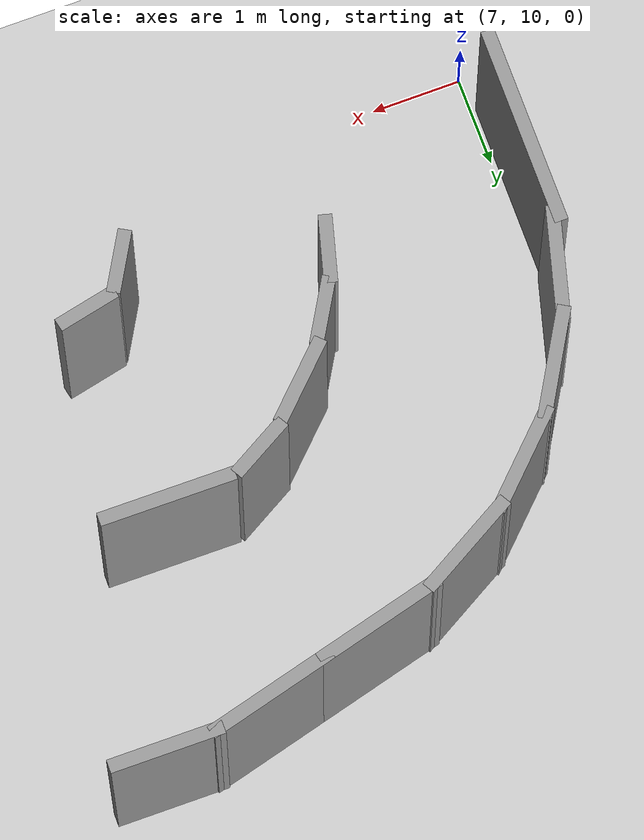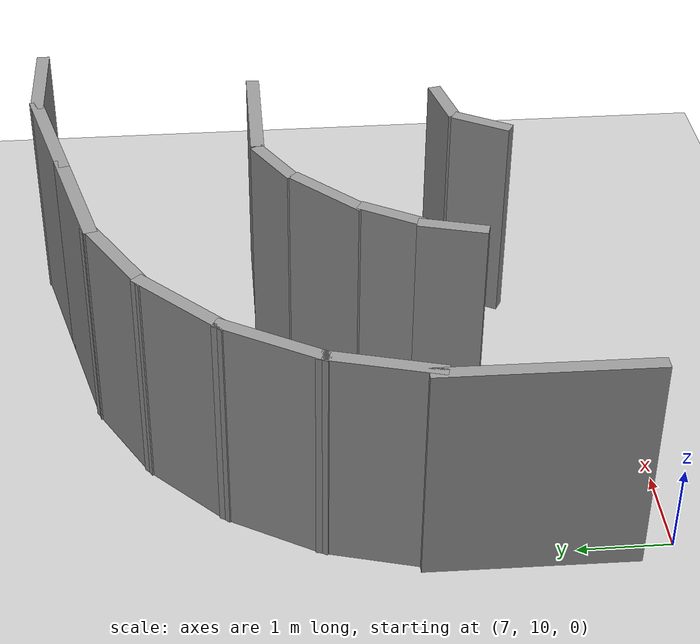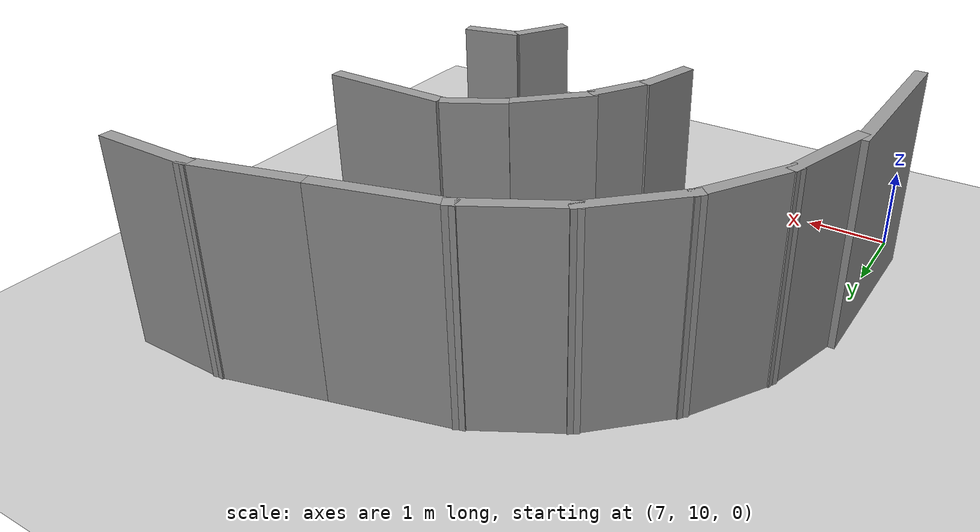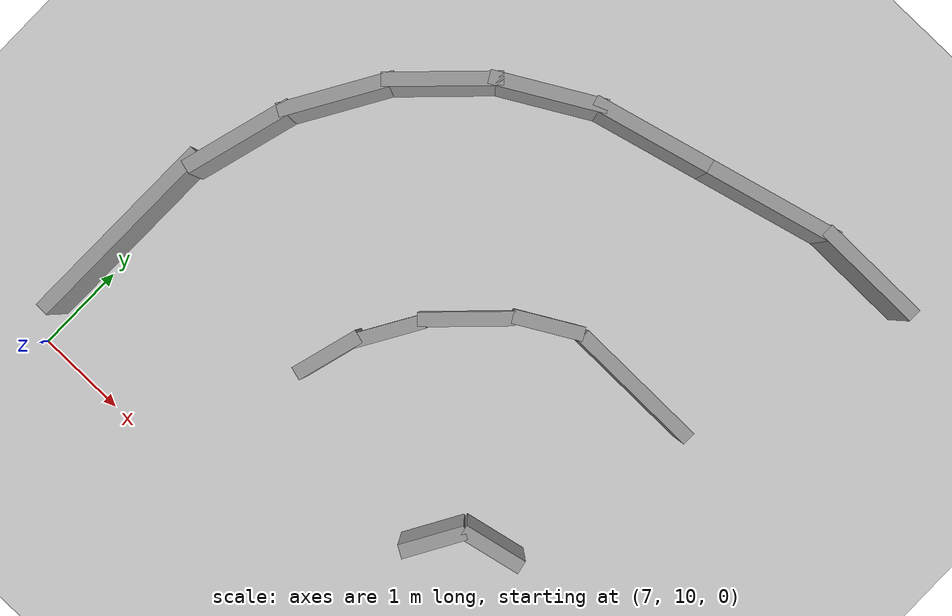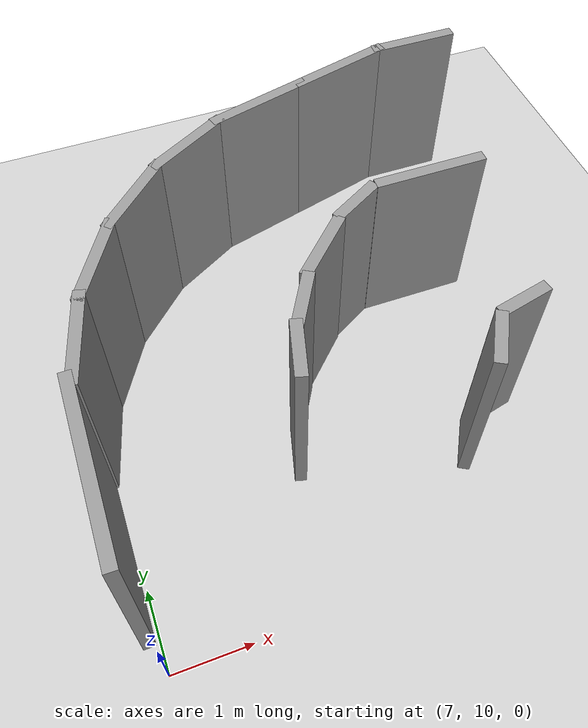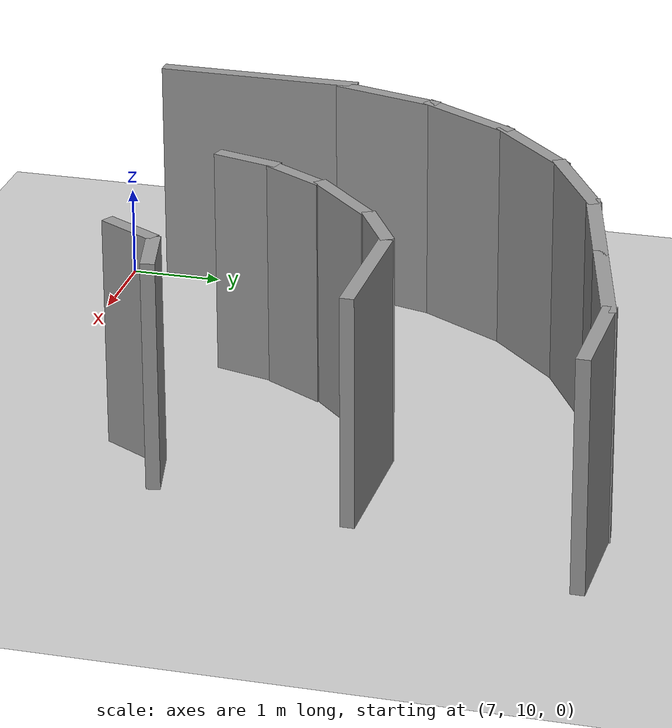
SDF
<sdf version="1.6">
 <world name="default">
  <model name="ground_plane">
   <static>1</static>
   <link name="link">
    <collision name="collision">
     <geometry><plane><normal>0 0 1</normal><size>100 100</size></plane></geometry>
     <surface><friction><ode><mu>100</mu><mu2>50</mu2></ode></friction></surface>
    </collision>
    <visual name="visual">
     <cast_shadows>0</cast_shadows>
     <geometry><plane><normal>0 0 1</normal><size>100 100</size></plane></geometry>
     <material>
      <script><uri>file://media/materials/scripts/gazebo.material</uri><name>Gazebo/Grey</name></script>
     </material>
    </visual>
   </link>
  </model>
  <model name="c-Snail_v3_clone">
   <link name="Wall_21">
    <pose>5.25228 -5.75509 0 0 -0 0</pose>
    <visual name="Wall_21_Visual">
     <pose>0 0 1.25 0 -0 0</pose>
     <geometry><box><size>2.25 0.15 2.5</size></box></geometry>
     <material>
      <script><uri>file://media/materials/scripts/gazebo.material</uri><name>Gazebo/Grey</name></script>
      <ambient>1 1 1 1</ambient>
     </material>
     <meta><layer>0</layer></meta>
    </visual>
    <collision name="Wall_21_Collision">
     <pose>0 0 1.25 0 -0 0</pose>
     <geometry><box><size>2.25 0.15 2.5</size></box></geometry>
     <surface>
      <friction>
       <ode><mu>1</mu><mu2>1</mu2><fdir1>0 0 0</fdir1><slip1>0</slip1><slip2>0</slip2></ode>
       <torsional>
        <coefficient>1</coefficient>
        <patch_radius>0</patch_radius>
        <surface_radius>0</surface_radius>
        <use_patch_radius>1</use_patch_radius>
        <ode><slip>0</slip></ode>
       </torsional>
      </friction>
      <bounce><restitution_coefficient>0</restitution_coefficient><threshold>1e+06</threshold></bounce>
      <contact>
       <collide_without_contact>0</collide_without_contact>
       <collide_without_contact_bitmask>1</collide_without_contact_bitmask>
       <collide_bitmask>1</collide_bitmask>
       <ode>
        <soft_cfm>0</soft_cfm>
        <soft_erp>0.2</soft_erp>
        <kp>1e+13</kp>
        <kd>1</kd>
        <max_vel>0.01</max_vel>
        <min_depth>0</min_depth>
       </ode>
       <bullet>
        <split_impulse>1</split_impulse>
        <split_impulse_penetration_threshold>-0.01</split_impulse_penetration_threshold>
        <soft_cfm>0</soft_cfm>
        <soft_erp>0.2</soft_erp>
        <kp>1e+13</kp>
        <kd>1</kd>
       </bullet>
      </contact>
     </surface>
    </collision>
   </link>
   <link name="Wall_22">
    <pose>6.78859 -5.56286 0 0 -0 0.261799</pose>
    <visual name="Wall_22_Visual">
     <pose>0 0 1.25 0 -0 0</pose>
     <geometry><box><size>1.25 0.15 2.5</size></box></geometry>
     <material>
      <script><uri>file://media/materials/scripts/gazebo.material</uri><name>Gazebo/Grey</name></script>
      <ambient>1 1 1 1</ambient>
     </material>
     <meta><layer>0</layer></meta>
    </visual>
    <collision name="Wall_22_Collision">
     <pose>0 0 1.25 0 -0 0</pose>
     <geometry><box><size>1.25 0.15 2.5</size></box></geometry>
     <surface>
      <friction>
       <ode><mu>1</mu><mu2>1</mu2><fdir1>0 0 0</fdir1><slip1>0</slip1><slip2>0</slip2></ode>
       <torsional>
        <coefficient>1</coefficient>
        <patch_radius>0</patch_radius>
        <surface_radius>0</surface_radius>
        <use_patch_radius>1</use_patch_radius>
        <ode><slip>0</slip></ode>
       </torsional>
      </friction>
      <bounce><restitution_coefficient>0</restitution_coefficient><threshold>1e+06</threshold></bounce>
      <contact>
       <collide_without_contact>0</collide_without_contact>
       <collide_without_contact_bitmask>1</collide_without_contact_bitmask>
       <collide_bitmask>1</collide_bitmask>
       <ode>
        <soft_cfm>0</soft_cfm>
        <soft_erp>0.2</soft_erp>
        <kp>1e+13</kp>
        <kd>1</kd>
        <max_vel>0.01</max_vel>
        <min_depth>0</min_depth>
       </ode>
       <bullet>
        <split_impulse>1</split_impulse>
        <split_impulse_penetration_threshold>-0.01</split_impulse_penetration_threshold>
        <soft_cfm>0</soft_cfm>
        <soft_erp>0.2</soft_erp>
        <kp>1e+13</kp>
        <kd>1</kd>
       </bullet>
      </contact>
     </surface>
    </collision>
   </link>
   <link name="Wall_23">
    <pose>7.79617 -5.14551 0 0 -0 0.523599</pose>
    <visual name="Wall_23_Visual">
     <pose>0 0 1.25 0 -0 0</pose>
     <geometry><box><size>1.25 0.15 2.5</size></box></geometry>
     <material>
      <script><uri>file://media/materials/scripts/gazebo.material</uri><name>Gazebo/Grey</name></script>
      <ambient>1 1 1 1</ambient>
     </material>
     <meta><layer>0</layer></meta>
    </visual>
    <collision name="Wall_23_Collision">
     <pose>0 0 1.25 0 -0 0</pose>
     <geometry><box><size>1.25 0.15 2.5</size></box></geometry>
     <surface>
      <friction>
       <ode><mu>1</mu><mu2>1</mu2><fdir1>0 0 0</fdir1><slip1>0</slip1><slip2>0</slip2></ode>
       <torsional>
        <coefficient>1</coefficient>
        <patch_radius>0</patch_radius>
        <surface_radius>0</surface_radius>
        <use_patch_radius>1</use_patch_radius>
        <ode><slip>0</slip></ode>
       </torsional>
      </friction>
      <bounce><restitution_coefficient>0</restitution_coefficient><threshold>1e+06</threshold></bounce>
      <contact>
       <collide_without_contact>0</collide_without_contact>
       <collide_without_contact_bitmask>1</collide_without_contact_bitmask>
       <collide_bitmask>1</collide_bitmask>
       <ode>
        <soft_cfm>0</soft_cfm>
        <soft_erp>0.2</soft_erp>
        <kp>1e+13</kp>
        <kd>1</kd>
        <max_vel>0.01</max_vel>
        <min_depth>0</min_depth>
       </ode>
       <bullet>
        <split_impulse>1</split_impulse>
        <split_impulse_penetration_threshold>-0.01</split_impulse_penetration_threshold>
        <soft_cfm>0</soft_cfm>
        <soft_erp>0.2</soft_erp>
        <kp>1e+13</kp>
        <kd>1</kd>
       </bullet>
      </contact>
     </surface>
    </collision>
   </link>
   <link name="Wall_24">
    <pose>8.66139 -4.4816 0 0 -0 0.785398</pose>
    <visual name="Wall_24_Visual">
     <pose>0 0 1.25 0 -0 0</pose>
     <geometry><box><size>1.25 0.15 2.5</size></box></geometry>
     <material>
      <script><uri>file://media/materials/scripts/gazebo.material</uri><name>Gazebo/Grey</name></script>
      <ambient>1 1 1 1</ambient>
     </material>
     <meta><layer>0</layer></meta>
    </visual>
    <collision name="Wall_24_Collision">
     <pose>0 0 1.25 0 -0 0</pose>
     <geometry><box><size>1.25 0.15 2.5</size></box></geometry>
     <surface>
      <friction>
       <ode><mu>1</mu><mu2>1</mu2><fdir1>0 0 0</fdir1><slip1>0</slip1><slip2>0</slip2></ode>
       <torsional>
        <coefficient>1</coefficient>
        <patch_radius>0</patch_radius>
        <surface_radius>0</surface_radius>
        <use_patch_radius>1</use_patch_radius>
        <ode><slip>0</slip></ode>
       </torsional>
      </friction>
      <bounce><restitution_coefficient>0</restitution_coefficient><threshold>1e+06</threshold></bounce>
      <contact>
       <collide_without_contact>0</collide_without_contact>
       <collide_without_contact_bitmask>1</collide_without_contact_bitmask>
       <collide_bitmask>1</collide_bitmask>
       <ode>
        <soft_cfm>0</soft_cfm>
        <soft_erp>0.2</soft_erp>
        <kp>1e+13</kp>
        <kd>1</kd>
        <max_vel>0.01</max_vel>
        <min_depth>0</min_depth>
       </ode>
       <bullet>
        <split_impulse>1</split_impulse>
        <split_impulse_penetration_threshold>-0.01</split_impulse_penetration_threshold>
        <soft_cfm>0</soft_cfm>
        <soft_erp>0.2</soft_erp>
        <kp>1e+13</kp>
        <kd>1</kd>
       </bullet>
      </contact>
     </surface>
    </collision>
   </link>
   <link name="Wall_25">
    <pose>9.3253 -3.61638 0 0 -0 1.0472</pose>
    <visual name="Wall_25_Visual">
     <pose>0 0 1.25 0 -0 0</pose>
     <geometry><box><size>1.25 0.15 2.5</size></box></geometry>
     <material>
      <script><uri>file://media/materials/scripts/gazebo.material</uri><name>Gazebo/Grey</name></script>
      <ambient>1 1 1 1</ambient>
     </material>
     <meta><layer>0</layer></meta>
    </visual>
    <collision name="Wall_25_Collision">
     <pose>0 0 1.25 0 -0 0</pose>
     <geometry><box><size>1.25 0.15 2.5</size></box></geometry>
     <surface>
      <friction>
       <ode><mu>1</mu><mu2>1</mu2><fdir1>0 0 0</fdir1><slip1>0</slip1><slip2>0</slip2></ode>
       <torsional>
        <coefficient>1</coefficient>
        <patch_radius>0</patch_radius>
        <surface_radius>0</surface_radius>
        <use_patch_radius>1</use_patch_radius>
        <ode><slip>0</slip></ode>
       </torsional>
      </friction>
      <bounce><restitution_coefficient>0</restitution_coefficient><threshold>1e+06</threshold></bounce>
      <contact>
       <collide_without_contact>0</collide_without_contact>
       <collide_without_contact_bitmask>1</collide_without_contact_bitmask>
       <collide_bitmask>1</collide_bitmask>
       <ode>
        <soft_cfm>0</soft_cfm>
        <soft_erp>0.2</soft_erp>
        <kp>1e+13</kp>
        <kd>1</kd>
        <max_vel>0.01</max_vel>
        <min_depth>0</min_depth>
       </ode>
       <bullet>
        <split_impulse>1</split_impulse>
        <split_impulse_penetration_threshold>-0.01</split_impulse_penetration_threshold>
        <soft_cfm>0</soft_cfm>
        <soft_erp>0.2</soft_erp>
        <kp>1e+13</kp>
        <kd>1</kd>
       </bullet>
      </contact>
     </surface>
    </collision>
   </link>
   <link name="Wall_26">
    <pose>9.775 -2.48806 0 0 -0 1.309</pose>
    <visual name="Wall_26_Visual">
     <pose>0 0 1.25 0 -0 0</pose>
     <geometry><box><size>1.5 0.15 2.5</size></box></geometry>
     <material>
      <script><uri>file://media/materials/scripts/gazebo.material</uri><name>Gazebo/Grey</name></script>
      <ambient>1 1 1 1</ambient>
     </material>
     <meta><layer>0</layer></meta>
    </visual>
    <collision name="Wall_26_Collision">
     <pose>0 0 1.25 0 -0 0</pose>
     <geometry><box><size>1.5 0.15 2.5</size></box></geometry>
     <surface>
      <friction>
       <ode><mu>1</mu><mu2>1</mu2><fdir1>0 0 0</fdir1><slip1>0</slip1><slip2>0</slip2></ode>
       <torsional>
        <coefficient>1</coefficient>
        <patch_radius>0</patch_radius>
        <surface_radius>0</surface_radius>
        <use_patch_radius>1</use_patch_radius>
        <ode><slip>0</slip></ode>
       </torsional>
      </friction>
      <bounce><restitution_coefficient>0</restitution_coefficient><threshold>1e+06</threshold></bounce>
      <contact>
       <collide_without_contact>0</collide_without_contact>
       <collide_without_contact_bitmask>1</collide_without_contact_bitmask>
       <collide_bitmask>1</collide_bitmask>
       <ode>
        <soft_cfm>0</soft_cfm>
        <soft_erp>0.2</soft_erp>
        <kp>1e+13</kp>
        <kd>1</kd>
        <max_vel>0.01</max_vel>
        <min_depth>0</min_depth>
       </ode>
       <bullet>
        <split_impulse>1</split_impulse>
        <split_impulse_penetration_threshold>-0.01</split_impulse_penetration_threshold>
        <soft_cfm>0</soft_cfm>
        <soft_erp>0.2</soft_erp>
        <kp>1e+13</kp>
        <kd>1</kd>
       </bullet>
      </contact>
     </surface>
    </collision>
   </link>
   <link name="Wall_27">
    <pose>10.1244 -1.18406 0 0 -0 1.309</pose>
    <visual name="Wall_27_Visual">
     <pose>0 0 1.25 0 -0 0</pose>
     <geometry><box><size>1.5 0.15 2.5</size></box></geometry>
     <material>
      <script><uri>file://media/materials/scripts/gazebo.material</uri><name>Gazebo/Grey</name></script>
      <ambient>1 1 1 1</ambient>
     </material>
     <meta><layer>0</layer></meta>
    </visual>
    <collision name="Wall_27_Collision">
     <pose>0 0 1.25 0 -0 0</pose>
     <geometry><box><size>1.5 0.15 2.5</size></box></geometry>
     <surface>
      <friction>
       <ode><mu>1</mu><mu2>1</mu2><fdir1>0 0 0</fdir1><slip1>0</slip1><slip2>0</slip2></ode>
       <torsional>
        <coefficient>1</coefficient>
        <patch_radius>0</patch_radius>
        <surface_radius>0</surface_radius>
        <use_patch_radius>1</use_patch_radius>
        <ode><slip>0</slip></ode>
       </torsional>
      </friction>
      <bounce><restitution_coefficient>0</restitution_coefficient><threshold>1e+06</threshold></bounce>
      <contact>
       <collide_without_contact>0</collide_without_contact>
       <collide_without_contact_bitmask>1</collide_without_contact_bitmask>
       <collide_bitmask>1</collide_bitmask>
       <ode>
        <soft_cfm>0</soft_cfm>
        <soft_erp>0.2</soft_erp>
        <kp>1e+13</kp>
        <kd>1</kd>
        <max_vel>0.01</max_vel>
        <min_depth>0</min_depth>
       </ode>
       <bullet>
        <split_impulse>1</split_impulse>
        <split_impulse_penetration_threshold>-0.01</split_impulse_penetration_threshold>
        <soft_cfm>0</soft_cfm>
        <soft_erp>0.2</soft_erp>
        <kp>1e+13</kp>
        <kd>1</kd>
       </bullet>
      </contact>
     </surface>
    </collision>
   </link>
   <link name="Wall_28">
    <pose>10.2991 0.017937 0 0 -0 1.5708</pose>
    <visual name="Wall_28_Visual">
     <pose>0 0 1.25 0 -0 0</pose>
     <geometry><box><size>1.25 0.15 2.5</size></box></geometry>
     <material>
      <script><uri>file://media/materials/scripts/gazebo.material</uri><name>Gazebo/Grey</name></script>
      <ambient>1 1 1 1</ambient>
     </material>
     <meta><layer>0</layer></meta>
    </visual>
    <collision name="Wall_28_Collision">
     <pose>0 0 1.25 0 -0 0</pose>
     <geometry><box><size>1.25 0.15 2.5</size></box></geometry>
     <surface>
      <friction>
       <ode><mu>1</mu><mu2>1</mu2><fdir1>0 0 0</fdir1><slip1>0</slip1><slip2>0</slip2></ode>
       <torsional>
        <coefficient>1</coefficient>
        <patch_radius>0</patch_radius>
        <surface_radius>0</surface_radius>
        <use_patch_radius>1</use_patch_radius>
        <ode><slip>0</slip></ode>
       </torsional>
      </friction>
      <bounce><restitution_coefficient>0</restitution_coefficient><threshold>1e+06</threshold></bounce>
      <contact>
       <collide_without_contact>0</collide_without_contact>
       <collide_without_contact_bitmask>1</collide_without_contact_bitmask>
       <collide_bitmask>1</collide_bitmask>
       <ode>
        <soft_cfm>0</soft_cfm>
        <soft_erp>0.2</soft_erp>
        <kp>1e+13</kp>
        <kd>1</kd>
        <max_vel>0.01</max_vel>
        <min_depth>0</min_depth>
       </ode>
       <bullet>
        <split_impulse>1</split_impulse>
        <split_impulse_penetration_threshold>-0.01</split_impulse_penetration_threshold>
        <soft_cfm>0</soft_cfm>
        <soft_erp>0.2</soft_erp>
        <kp>1e+13</kp>
        <kd>1</kd>
       </bullet>
      </contact>
     </surface>
    </collision>
   </link>
   <link name="Wall_50">
    <pose>5.83118 -3.35199 0 0 -0 0.261799</pose>
    <visual name="Wall_50_Visual">
     <pose>0 0 1.25 0 -0 0</pose>
     <geometry><box><size>0.75 0.15 2.5</size></box></geometry>
     <material>
      <script><uri>file://media/materials/scripts/gazebo.material</uri><name>Gazebo/Grey</name></script>
      <ambient>1 1 1 1</ambient>
     </material>
     <meta><layer>0</layer></meta>
    </visual>
    <collision name="Wall_50_Collision">
     <pose>0 0 1.25 0 -0 0</pose>
     <geometry><box><size>0.75 0.15 2.5</size></box></geometry>
     <surface>
      <friction>
       <ode><mu>1</mu><mu2>1</mu2><fdir1>0 0 0</fdir1><slip1>0</slip1><slip2>0</slip2></ode>
       <torsional>
        <coefficient>1</coefficient>
        <patch_radius>0</patch_radius>
        <surface_radius>0</surface_radius>
        <use_patch_radius>1</use_patch_radius>
        <ode><slip>0</slip></ode>
       </torsional>
      </friction>
      <bounce><restitution_coefficient>0</restitution_coefficient><threshold>1e+06</threshold></bounce>
      <contact>
       <collide_without_contact>0</collide_without_contact>
       <collide_without_contact_bitmask>1</collide_without_contact_bitmask>
       <collide_bitmask>1</collide_bitmask>
       <ode>
        <soft_cfm>0</soft_cfm>
        <soft_erp>0.2</soft_erp>
        <kp>1e+13</kp>
        <kd>1</kd>
        <max_vel>0.01</max_vel>
        <min_depth>0</min_depth>
       </ode>
       <bullet>
        <split_impulse>1</split_impulse>
        <split_impulse_penetration_threshold>-0.01</split_impulse_penetration_threshold>
        <soft_cfm>0</soft_cfm>
        <soft_erp>0.2</soft_erp>
        <kp>1e+13</kp>
        <kd>1</kd>
       </bullet>
      </contact>
     </surface>
    </collision>
   </link>
   <link name="Wall_51">
    <pose>6.44534 -3.07335 0 0 -0 0.523599</pose>
    <visual name="Wall_51_Visual">
     <pose>0 0 1.25 0 -0 0</pose>
     <geometry><box><size>0.75 0.15 2.5</size></box></geometry>
     <material>
      <script><uri>file://media/materials/scripts/gazebo.material</uri><name>Gazebo/Grey</name></script>
      <ambient>1 1 1 1</ambient>
     </material>
     <meta><layer>0</layer></meta>
    </visual>
    <collision name="Wall_51_Collision">
     <pose>0 0 1.25 0 -0 0</pose>
     <geometry><box><size>0.75 0.15 2.5</size></box></geometry>
     <surface>
      <friction>
       <ode><mu>1</mu><mu2>1</mu2><fdir1>0 0 0</fdir1><slip1>0</slip1><slip2>0</slip2></ode>
       <torsional>
        <coefficient>1</coefficient>
        <patch_radius>0</patch_radius>
        <surface_radius>0</surface_radius>
        <use_patch_radius>1</use_patch_radius>
        <ode><slip>0</slip></ode>
       </torsional>
      </friction>
      <bounce><restitution_coefficient>0</restitution_coefficient><threshold>1e+06</threshold></bounce>
      <contact>
       <collide_without_contact>0</collide_without_contact>
       <collide_without_contact_bitmask>1</collide_without_contact_bitmask>
       <collide_bitmask>1</collide_bitmask>
       <ode>
        <soft_cfm>0</soft_cfm>
        <soft_erp>0.2</soft_erp>
        <kp>1e+13</kp>
        <kd>1</kd>
        <max_vel>0.01</max_vel>
        <min_depth>0</min_depth>
       </ode>
       <bullet>
        <split_impulse>1</split_impulse>
        <split_impulse_penetration_threshold>-0.01</split_impulse_penetration_threshold>
        <soft_cfm>0</soft_cfm>
        <soft_erp>0.2</soft_erp>
        <kp>1e+13</kp>
        <kd>1</kd>
       </bullet>
      </contact>
     </surface>
    </collision>
   </link>
   <link name="Wall_52">
    <pose>7.08455 -2.59483 0 0 -0 0.785398</pose>
    <visual name="Wall_52_Visual">
     <pose>0 0 1.25 0 -0 0</pose>
     <geometry><box><size>1 0.15 2.5</size></box></geometry>
     <material>
      <script><uri>file://media/materials/scripts/gazebo.material</uri><name>Gazebo/Grey</name></script>
      <ambient>1 1 1 1</ambient>
     </material>
     <meta><layer>0</layer></meta>
    </visual>
    <collision name="Wall_52_Collision">
     <pose>0 0 1.25 0 -0 0</pose>
     <geometry><box><size>1 0.15 2.5</size></box></geometry>
     <surface>
      <friction>
       <ode><mu>1</mu><mu2>1</mu2><fdir1>0 0 0</fdir1><slip1>0</slip1><slip2>0</slip2></ode>
       <torsional>
        <coefficient>1</coefficient>
        <patch_radius>0</patch_radius>
        <surface_radius>0</surface_radius>
        <use_patch_radius>1</use_patch_radius>
        <ode><slip>0</slip></ode>
       </torsional>
      </friction>
      <bounce><restitution_coefficient>0</restitution_coefficient><threshold>1e+06</threshold></bounce>
      <contact>
       <collide_without_contact>0</collide_without_contact>
       <collide_without_contact_bitmask>1</collide_without_contact_bitmask>
       <collide_bitmask>1</collide_bitmask>
       <ode>
        <soft_cfm>0</soft_cfm>
        <soft_erp>0.2</soft_erp>
        <kp>1e+13</kp>
        <kd>1</kd>
        <max_vel>0.01</max_vel>
        <min_depth>0</min_depth>
       </ode>
       <bullet>
        <split_impulse>1</split_impulse>
        <split_impulse_penetration_threshold>-0.01</split_impulse_penetration_threshold>
        <soft_cfm>0</soft_cfm>
        <soft_erp>0.2</soft_erp>
        <kp>1e+13</kp>
        <kd>1</kd>
       </bullet>
      </contact>
     </surface>
    </collision>
   </link>
   <link name="Wall_53">
    <pose>7.62419 -1.95298 0 0 -0 1.0472</pose>
    <visual name="Wall_53_Visual">
     <pose>0 0 1.25 0 -0 0</pose>
     <geometry><box><size>0.75 0.15 2.5</size></box></geometry>
     <material>
      <script><uri>file://media/materials/scripts/gazebo.material</uri><name>Gazebo/Grey</name></script>
      <ambient>1 1 1 1</ambient>
     </material>
     <meta><layer>0</layer></meta>
    </visual>
    <collision name="Wall_53_Collision">
     <pose>0 0 1.25 0 -0 0</pose>
     <geometry><box><size>0.75 0.15 2.5</size></box></geometry>
     <surface>
      <friction>
       <ode><mu>1</mu><mu2>1</mu2><fdir1>0 0 0</fdir1><slip1>0</slip1><slip2>0</slip2></ode>
       <torsional>
        <coefficient>1</coefficient>
        <patch_radius>0</patch_radius>
        <surface_radius>0</surface_radius>
        <use_patch_radius>1</use_patch_radius>
        <ode><slip>0</slip></ode>
       </torsional>
      </friction>
      <bounce><restitution_coefficient>0</restitution_coefficient><threshold>1e+06</threshold></bounce>
      <contact>
       <collide_without_contact>0</collide_without_contact>
       <collide_without_contact_bitmask>1</collide_without_contact_bitmask>
       <collide_bitmask>1</collide_bitmask>
       <ode>
        <soft_cfm>0</soft_cfm>
        <soft_erp>0.2</soft_erp>
        <kp>1e+13</kp>
        <kd>1</kd>
        <max_vel>0.01</max_vel>
        <min_depth>0</min_depth>
       </ode>
       <bullet>
        <split_impulse>1</split_impulse>
        <split_impulse_penetration_threshold>-0.01</split_impulse_penetration_threshold>
        <soft_cfm>0</soft_cfm>
        <soft_erp>0.2</soft_erp>
        <kp>1e+13</kp>
        <kd>1</kd>
       </bullet>
      </contact>
     </surface>
    </collision>
   </link>
   <link name="Wall_54">
    <pose>7.79615 -0.874793 0 0 -0 1.5708</pose>
    <visual name="Wall_54_Visual">
     <pose>0 0 1.25 0 -0 0</pose>
     <geometry><box><size>1.5 0.15 2.5</size></box></geometry>
     <material>
      <script><uri>file://media/materials/scripts/gazebo.material</uri><name>Gazebo/Grey</name></script>
      <ambient>1 1 1 1</ambient>
     </material>
     <meta><layer>0</layer></meta>
    </visual>
    <collision name="Wall_54_Collision">
     <pose>0 0 1.25 0 -0 0</pose>
     <geometry><box><size>1.5 0.15 2.5</size></box></geometry>
     <surface>
      <friction>
       <ode><mu>1</mu><mu2>1</mu2><fdir1>0 0 0</fdir1><slip1>0</slip1><slip2>0</slip2></ode>
       <torsional>
        <coefficient>1</coefficient>
        <patch_radius>0</patch_radius>
        <surface_radius>0</surface_radius>
        <use_patch_radius>1</use_patch_radius>
        <ode><slip>0</slip></ode>
       </torsional>
      </friction>
      <bounce><restitution_coefficient>0</restitution_coefficient><threshold>1e+06</threshold></bounce>
      <contact>
       <collide_without_contact>0</collide_without_contact>
       <collide_without_contact_bitmask>1</collide_without_contact_bitmask>
       <collide_bitmask>1</collide_bitmask>
       <ode>
        <soft_cfm>0</soft_cfm>
        <soft_erp>0.2</soft_erp>
        <kp>1e+13</kp>
        <kd>1</kd>
        <max_vel>0.01</max_vel>
        <min_depth>0</min_depth>
       </ode>
       <bullet>
        <split_impulse>1</split_impulse>
        <split_impulse_penetration_threshold>-0.01</split_impulse_penetration_threshold>
        <soft_cfm>0</soft_cfm>
        <soft_erp>0.2</soft_erp>
        <kp>1e+13</kp>
        <kd>1</kd>
       </bullet>
      </contact>
     </surface>
    </collision>
   </link>
   <link name="Wall_73">
    <pose>5.22018 -1.25259 0 0 -0 0.514025</pose>
    <visual name="Wall_73_Visual">
     <pose>0 0 1.25 0 -0 0</pose>
     <geometry><box><size>0.701928 0.15 2.5</size></box></geometry>
     <material>
      <script><uri>file://media/materials/scripts/gazebo.material</uri><name>Gazebo/Grey</name></script>
      <ambient>1 1 1 1</ambient>
     </material>
     <meta><layer>0</layer></meta>
    </visual>
    <collision name="Wall_73_Collision">
     <pose>0 0 1.25 0 -0 0</pose>
     <geometry><box><size>0.701928 0.15 2.5</size></box></geometry>
     <surface>
      <friction>
       <ode><mu>1</mu><mu2>1</mu2><fdir1>0 0 0</fdir1><slip1>0</slip1><slip2>0</slip2></ode>
       <torsional>
        <coefficient>1</coefficient>
        <patch_radius>0</patch_radius>
        <surface_radius>0</surface_radius>
        <use_patch_radius>1</use_patch_radius>
        <ode><slip>0</slip></ode>
       </torsional>
      </friction>
      <bounce><restitution_coefficient>0</restitution_coefficient><threshold>1e+06</threshold></bounce>
      <contact>
       <collide_without_contact>0</collide_without_contact>
       <collide_without_contact_bitmask>1</collide_without_contact_bitmask>
       <collide_bitmask>1</collide_bitmask>
       <ode>
        <soft_cfm>0</soft_cfm>
        <soft_erp>0.2</soft_erp>
        <kp>1e+13</kp>
        <kd>1</kd>
        <max_vel>0.01</max_vel>
        <min_depth>0</min_depth>
       </ode>
       <bullet>
        <split_impulse>1</split_impulse>
        <split_impulse_penetration_threshold>-0.01</split_impulse_penetration_threshold>
        <soft_cfm>0</soft_cfm>
        <soft_erp>0.2</soft_erp>
        <kp>1e+13</kp>
        <kd>1</kd>
       </bullet>
      </contact>
     </surface>
    </collision>
   </link>
   <link name="Wall_73_clone">
    <pose>5.59262 -0.765538 0 0 0 -1.79294</pose>
    <visual name="Wall_73_Visual">
     <pose>0 0 1.25 0 -0 0</pose>
     <geometry><box><size>0.701928 0.15 2.5</size></box></geometry>
     <material>
      <script><uri>file://media/materials/scripts/gazebo.material</uri><name>Gazebo/Grey</name></script>
      <ambient>1 1 1 1</ambient>
      <shader type="pixel"/>
     </material>
     <meta><layer>0</layer></meta>
    </visual>
    <collision name="Wall_73_Collision">
     <pose>0 0 1.25 0 -0 0</pose>
     <geometry><box><size>0.701928 0.15 2.5</size></box></geometry>
     <surface>
      <friction>
       <ode><mu>1</mu><mu2>1</mu2><fdir1>0 0 0</fdir1><slip1>0</slip1><slip2>0</slip2></ode>
       <torsional>
        <coefficient>1</coefficient>
        <patch_radius>0</patch_radius>
        <surface_radius>0</surface_radius>
        <use_patch_radius>1</use_patch_radius>
        <ode><slip>0</slip></ode>
       </torsional>
      </friction>
      <bounce><restitution_coefficient>0</restitution_coefficient><threshold>1e+06</threshold></bounce>
      <contact>
       <collide_without_contact>0</collide_without_contact>
       <collide_without_contact_bitmask>1</collide_without_contact_bitmask>
       <collide_bitmask>1</collide_bitmask>
       <ode>
        <soft_cfm>0</soft_cfm>
        <soft_erp>0.2</soft_erp>
        <kp>1e+13</kp>
        <kd>1</kd>
        <max_vel>0.01</max_vel>
        <min_depth>0</min_depth>
       </ode>
       <bullet>
        <split_impulse>1</split_impulse>
        <split_impulse_penetration_threshold>-0.01</split_impulse_penetration_threshold>
        <soft_cfm>0</soft_cfm>
        <soft_erp>0.2</soft_erp>
        <kp>1e+13</kp>
        <kd>1</kd>
       </bullet>
      </contact>
     </surface>
    </collision>
   </link>
   <static>1</static>
   <pose>12.5927 6.18782 2.49853 -3.14159 -0.001569 1.56269</pose>
  </model>
 </world>
</sdf>
